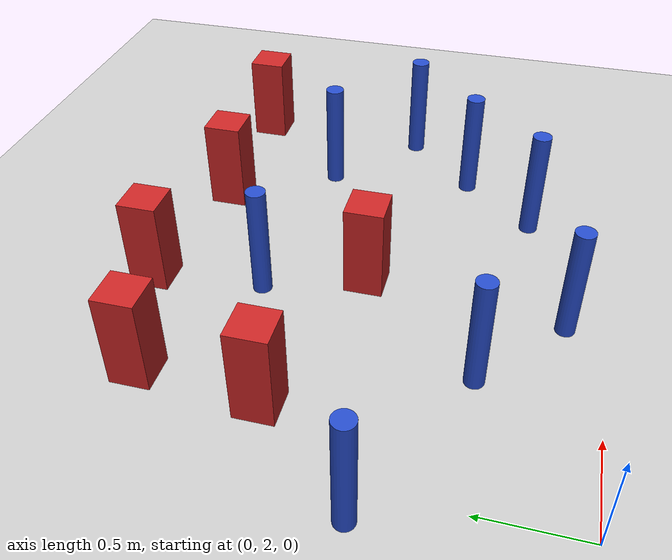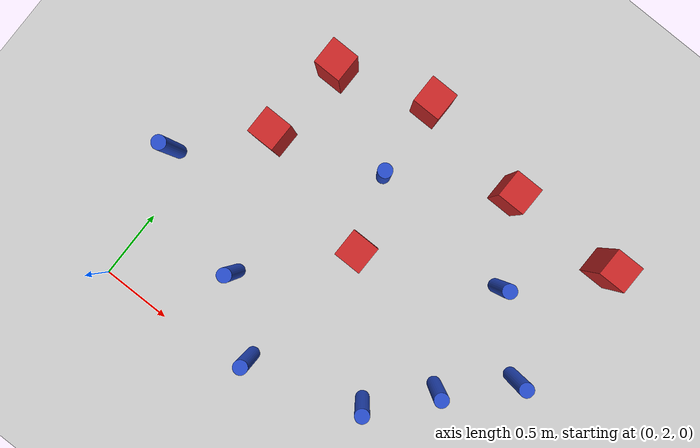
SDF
<sdf version="1.6">
 <world name="default">
  <model name="ground_plane">
   <static>1</static>
   <link name="link">
    <collision name="collision">
     <geometry><plane><normal>0 0 1</normal><size>100 100</size></plane></geometry>
     <surface><friction><ode><mu>100</mu><mu2>50</mu2></ode></friction></surface>
    </collision>
    <visual name="visual">
     <cast_shadows>0</cast_shadows>
     <geometry><plane><normal>0 0 1</normal><size>100 100</size></plane></geometry>
     <material>
      <ambient>1.0 1.0 1.0 1.0</ambient>
      <diffuse>0.8 0.8 0.8 1.0</diffuse>
      <specular>0.01 0.01 0.01 1.000000</specular>
     </material>
    </visual>
   </link>
  </model>
  <model name="pole_obstacle31">
   <static>true</static>
   <pose>0.698972050251 2.57138587034 7.38925637345e-09 -8.47170692799e-08 1.2497676509e-08 -1.74513093016e-07</pose>
   <link name="link">
    <pose>0 0 0.3 0 -0 0</pose>
    <inertial>
     <mass>1</mass>
     <inertia><ixx>0.145833</ixx><ixy>0</ixy><ixz>0</ixz><iyy>0.145833</iyy><iyz>0</iyz><izz>0.125</izz></inertia>
    </inertial>
    <collision name="collision">
     <geometry><cylinder><radius>0.05</radius><length>.6</length></cylinder></geometry>
    </collision>
    <visual name="visual">
     <geometry><cylinder><radius>0.05</radius><length>.6</length></cylinder></geometry>
     <material>
      <script><name>Gazebo/Blue</name><uri>file://media/materials/scripts/gazebo.material</uri></script>
     </material>
    </visual>
   </link>
  </model>
  <model name="pole_obstacle35">
   <static>true</static>
   <pose>1.13954586894 2.18539703814 7.38925637345e-09 -8.47170692799e-08 1.24976765053e-08 -1.74513093017e-07</pose>
   <link name="link">
    <pose>0 0 0.3 0 -0 0</pose>
    <inertial>
     <mass>1</mass>
     <inertia><ixx>0.145833</ixx><ixy>0</ixy><ixz>0</ixz><iyy>0.145833</iyy><iyz>0</iyz><izz>0.125</izz></inertia>
    </inertial>
    <collision name="collision">
     <geometry><cylinder><radius>0.05</radius><length>.6</length></cylinder></geometry>
    </collision>
    <visual name="visual">
     <geometry><cylinder><radius>0.05</radius><length>.6</length></cylinder></geometry>
     <material>
      <script><name>Gazebo/Blue</name><uri>file://media/materials/scripts/gazebo.material</uri></script>
     </material>
    </visual>
   </link>
  </model>
  <model name="pole_obstacle36">
   <static>true</static>
   <pose>1.92514680043 2.42542104154 7.38925637345e-09 -8.47170692799e-08 1.24976765053e-08 -1.74513093017e-07</pose>
   <link name="link">
    <pose>0 0 0.3 0 -0 0</pose>
    <inertial>
     <mass>1</mass>
     <inertia><ixx>0.145833</ixx><ixy>0</ixy><ixz>0</ixz><iyy>0.145833</iyy><iyz>0</iyz><izz>0.125</izz></inertia>
    </inertial>
    <collision name="collision">
     <geometry><cylinder><radius>0.05</radius><length>.6</length></cylinder></geometry>
    </collision>
    <visual name="visual">
     <geometry><cylinder><radius>0.05</radius><length>.6</length></cylinder></geometry>
     <material>
      <script><name>Gazebo/Blue</name><uri>file://media/materials/scripts/gazebo.material</uri></script>
     </material>
    </visual>
   </link>
  </model>
  <model name="pole_obstacle40">
   <static>true</static>
   <pose>-0.140297477696 2.96369750289 7.38925637345e-09 -8.47170692792e-08 1.24976764377e-08 -1.74513093042e-07</pose>
   <link name="link">
    <pose>0 0 0.3 0 -0 0</pose>
    <inertial>
     <mass>1</mass>
     <inertia><ixx>0.145833</ixx><ixy>0</ixy><ixz>0</ixz><iyy>0.145833</iyy><iyz>0</iyz><izz>0.125</izz></inertia>
    </inertial>
    <collision name="collision">
     <geometry><cylinder><radius>0.05</radius><length>.6</length></cylinder></geometry>
    </collision>
    <visual name="visual">
     <geometry><cylinder><radius>0.05</radius><length>.6</length></cylinder></geometry>
     <material>
      <script><name>Gazebo/Blue</name><uri>file://media/materials/scripts/gazebo.material</uri></script>
     </material>
    </visual>
   </link>
  </model>
  <model name="pole_obstacle44">
   <static>true</static>
   <pose>2.15742503474 3.61236505607 7.38925637345e-09 -8.47170692798e-08 1.24976764939e-08 -1.74513093025e-07</pose>
   <link name="link">
    <pose>0 0 0.3 0 -0 0</pose>
    <inertial>
     <mass>1</mass>
     <inertia><ixx>0.145833</ixx><ixy>0</ixy><ixz>0</ixz><iyy>0.145833</iyy><iyz>0</iyz><izz>0.125</izz></inertia>
    </inertial>
    <collision name="collision">
     <geometry><cylinder><radius>0.05</radius><length>.6</length></cylinder></geometry>
    </collision>
    <visual name="visual">
     <geometry><cylinder><radius>0.05</radius><length>.6</length></cylinder></geometry>
     <material>
      <script><name>Gazebo/Blue</name><uri>file://media/materials/scripts/gazebo.material</uri></script>
     </material>
    </visual>
   </link>
  </model>
  <model name="square_post_obstacle60">
   <static>true</static>
   <pose>1.03155334816 4.28420791257 1.91545236811e-07 -7.35059704564e-06 1.12565212e-07 2.39332434364e-05</pose>
   <link name="link">
    <pose>0 0 0.25 0 -0 0</pose>
    <inertial>
     <mass>100</mass>
     <inertia>
      <ixx>0.166667</ixx>
      <ixy>0</ixy>
      <ixz>0</ixz>
      <iyy>0.166667</iyy>
      <iyz>0</iyz>
      <izz>0.166667</izz>
     </inertia>
    </inertial>
    <collision name="collision"><geometry><box><size>.2 .2 .5</size></box></geometry></collision>
    <visual name="visual">
     <geometry><box><size>.2 .2 .5</size></box></geometry>
     <material>
      <script><name>Gazebo/Red</name><uri>file://media/materials/scripts/gazebo.material</uri></script>
     </material>
    </visual>
   </link>
  </model>
  <model name="square_post_obstacle109">
   <static>true</static>
   <pose>1.25293970613 3.20373089903 1.91545236811e-07 -7.35059704564e-06 1.12565212e-07 2.39332434364e-05</pose>
   <link name="link">
    <pose>0 0 0.25 0 -0 0</pose>
    <inertial>
     <mass>100</mass>
     <inertia>
      <ixx>0.166667</ixx>
      <ixy>0</ixy>
      <ixz>0</ixz>
      <iyy>0.166667</iyy>
      <iyz>0</iyz>
      <izz>0.166667</izz>
     </inertia>
    </inertial>
    <collision name="collision"><geometry><box><size>.2 .2 .5</size></box></geometry></collision>
    <visual name="visual">
     <geometry><box><size>.2 .2 .5</size></box></geometry>
     <material>
      <script><name>Gazebo/Red</name><uri>file://media/materials/scripts/gazebo.material</uri></script>
     </material>
    </visual>
   </link>
  </model>
  <model name="pole_obstacle139">
   <static>true</static>
   <pose>2.25131700589 2.81456950409 7.38925637345e-09 -8.47170692798e-08 1.24976764939e-08 -1.74513093025e-07</pose>
   <link name="link">
    <pose>0 0 0.3 0 -0 0</pose>
    <inertial>
     <mass>1</mass>
     <inertia><ixx>0.145833</ixx><ixy>0</ixy><ixz>0</ixz><iyy>0.145833</iyy><iyz>0</iyz><izz>0.125</izz></inertia>
    </inertial>
    <collision name="collision">
     <geometry><cylinder><radius>0.05</radius><length>.6</length></cylinder></geometry>
    </collision>
    <visual name="visual">
     <geometry><cylinder><radius>0.05</radius><length>.6</length></cylinder></geometry>
     <material>
      <script><name>Gazebo/Blue</name><uri>file://media/materials/scripts/gazebo.material</uri></script>
     </material>
    </visual>
   </link>
  </model>
  <model name="square_post_obstacle147">
   <static>true</static>
   <pose>0.326971583128 3.46836973683 1.91545236811e-07 -7.35059704564e-06 1.12565212e-07 2.39332434364e-05</pose>
   <link name="link">
    <pose>0 0 0.25 0 -0 0</pose>
    <inertial>
     <mass>100</mass>
     <inertia>
      <ixx>0.166667</ixx>
      <ixy>0</ixy>
      <ixz>0</ixz>
      <iyy>0.166667</iyy>
      <iyz>0</iyz>
      <izz>0.166667</izz>
     </inertia>
    </inertial>
    <collision name="collision"><geometry><box><size>.2 .2 .5</size></box></geometry></collision>
    <visual name="visual">
     <geometry><box><size>.2 .2 .5</size></box></geometry>
     <material>
      <script><name>Gazebo/Red</name><uri>file://media/materials/scripts/gazebo.material</uri></script>
     </material>
    </visual>
   </link>
  </model>
  <model name="square_post_obstacle148">
   <static>true</static>
   <pose>1.83271213947 4.15237861725 1.91545236811e-07 -7.35059704564e-06 1.12565212e-07 2.39332434364e-05</pose>
   <link name="link">
    <pose>0 0 0.25 0 -0 0</pose>
    <inertial>
     <mass>100</mass>
     <inertia>
      <ixx>0.166667</ixx>
      <ixy>0</ixy>
      <ixz>0</ixz>
      <iyy>0.166667</iyy>
      <iyz>0</iyz>
      <izz>0.166667</izz>
     </inertia>
    </inertial>
    <collision name="collision"><geometry><box><size>.2 .2 .5</size></box></geometry></collision>
    <visual name="visual">
     <geometry><box><size>.2 .2 .5</size></box></geometry>
     <material>
      <script><name>Gazebo/Red</name><uri>file://media/materials/scripts/gazebo.material</uri></script>
     </material>
    </visual>
   </link>
  </model>
  <model name="pole_obstacle157">
   <static>true</static>
   <pose>1.07508678061 3.71381754329 7.38925637345e-09 -8.47170692799e-08 1.24976765053e-08 -1.74513093017e-07</pose>
   <link name="link">
    <pose>0 0 0.3 0 -0 0</pose>
    <inertial>
     <mass>1</mass>
     <inertia><ixx>0.145833</ixx><ixy>0</ixy><ixz>0</ixz><iyy>0.145833</iyy><iyz>0</iyz><izz>0.125</izz></inertia>
    </inertial>
    <collision name="collision">
     <geometry><cylinder><radius>0.05</radius><length>.6</length></cylinder></geometry>
    </collision>
    <visual name="visual">
     <geometry><cylinder><radius>0.05</radius><length>.6</length></cylinder></geometry>
     <material>
      <script><name>Gazebo/Blue</name><uri>file://media/materials/scripts/gazebo.material</uri></script>
     </material>
    </visual>
   </link>
  </model>
  <model name="square_post_obstacle161">
   <static>true</static>
   <pose>2.64797752137 4.1649786972 1.91545236811e-07 -7.35059704564e-06 1.12565212e-07 2.39332434364e-05</pose>
   <link name="link">
    <pose>0 0 0.25 0 -0 0</pose>
    <inertial>
     <mass>100</mass>
     <inertia>
      <ixx>0.166667</ixx>
      <ixy>0</ixy>
      <ixz>0</ixz>
      <iyy>0.166667</iyy>
      <iyz>0</iyz>
      <izz>0.166667</izz>
     </inertia>
    </inertial>
    <collision name="collision"><geometry><box><size>.2 .2 .5</size></box></geometry></collision>
    <visual name="visual">
     <geometry><box><size>.2 .2 .5</size></box></geometry>
     <material>
      <script><name>Gazebo/Red</name><uri>file://media/materials/scripts/gazebo.material</uri></script>
     </material>
    </visual>
   </link>
  </model>
  <model name="pole_obstacle184">
   <static>true</static>
   <pose>2.62605119965 3.1975418865 7.38925637345e-09 -8.47170692798e-08 1.24976764939e-08 -1.74513093025e-07</pose>
   <link name="link">
    <pose>0 0 0.3 0 -0 0</pose>
    <inertial>
     <mass>1</mass>
     <inertia><ixx>0.145833</ixx><ixy>0</ixy><ixz>0</ixz><iyy>0.145833</iyy><iyz>0</iyz><izz>0.125</izz></inertia>
    </inertial>
    <collision name="collision">
     <geometry><cylinder><radius>0.05</radius><length>.6</length></cylinder></geometry>
    </collision>
    <visual name="visual">
     <geometry><cylinder><radius>0.05</radius><length>.6</length></cylinder></geometry>
     <material>
      <script><name>Gazebo/Blue</name><uri>file://media/materials/scripts/gazebo.material</uri></script>
     </material>
    </visual>
   </link>
  </model>
  <model name="square_post_obstacle190">
   <static>true</static>
   <pose>0.383070214306 4.07924368514 1.91545236811e-07 -7.35059704564e-06 1.12565212e-07 2.39332434364e-05</pose>
   <link name="link">
    <pose>0 0 0.25 0 -0 0</pose>
    <inertial>
     <mass>100</mass>
     <inertia>
      <ixx>0.166667</ixx>
      <ixy>0</ixy>
      <ixz>0</ixz>
      <iyy>0.166667</iyy>
      <iyz>0</iyz>
      <izz>0.166667</izz>
     </inertia>
    </inertial>
    <collision name="collision"><geometry><box><size>.2 .2 .5</size></box></geometry></collision>
    <visual name="visual">
     <geometry><box><size>.2 .2 .5</size></box></geometry>
     <material>
      <script><name>Gazebo/Red</name><uri>file://media/materials/scripts/gazebo.material</uri></script>
     </material>
    </visual>
   </link>
  </model>
 </world>
</sdf>
